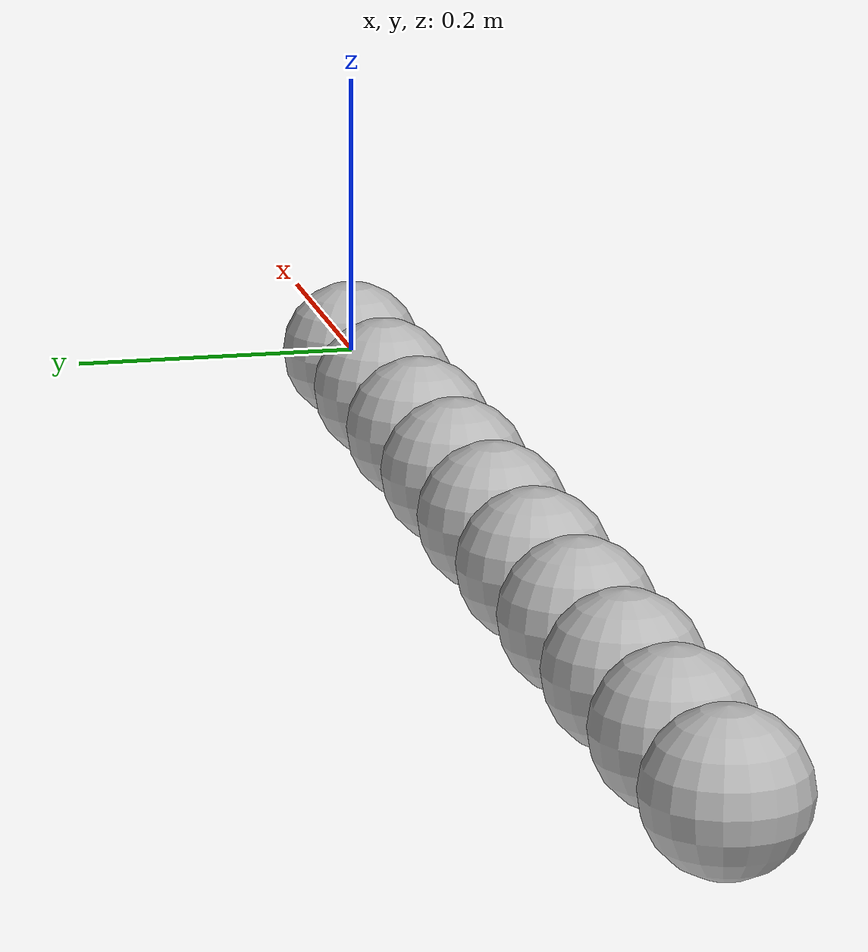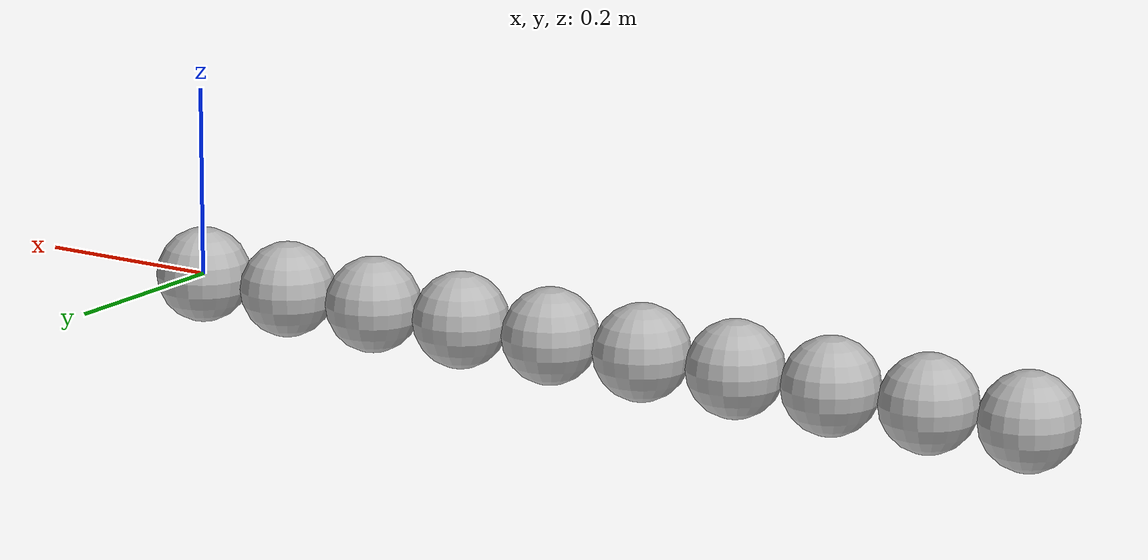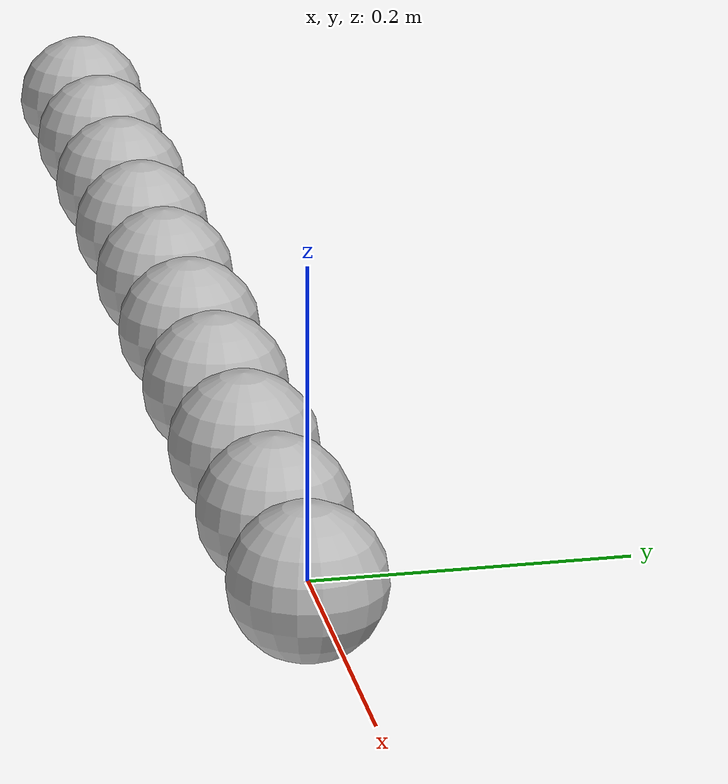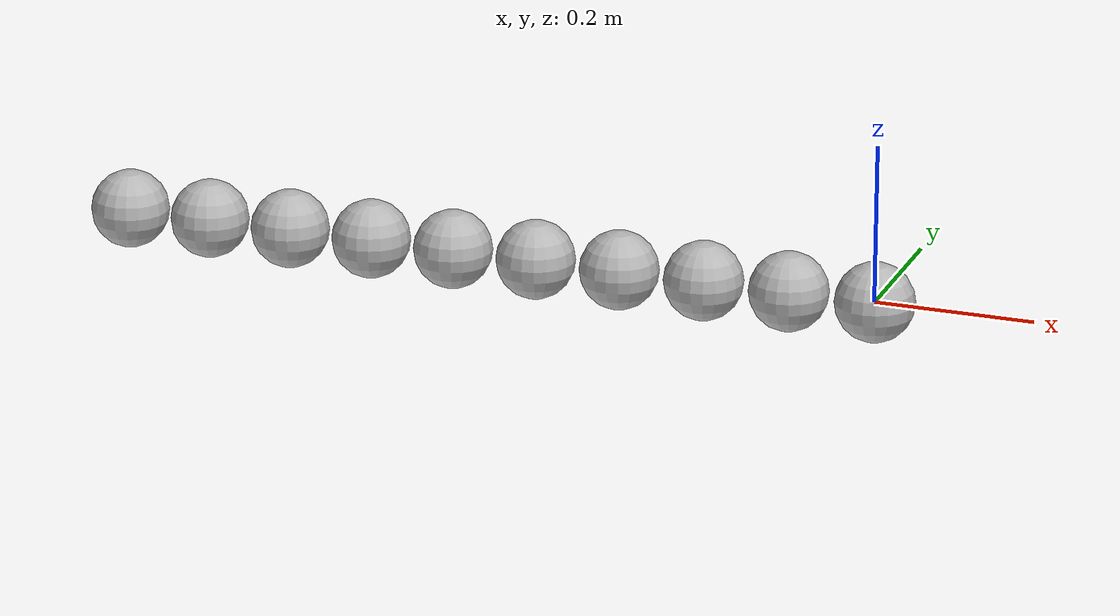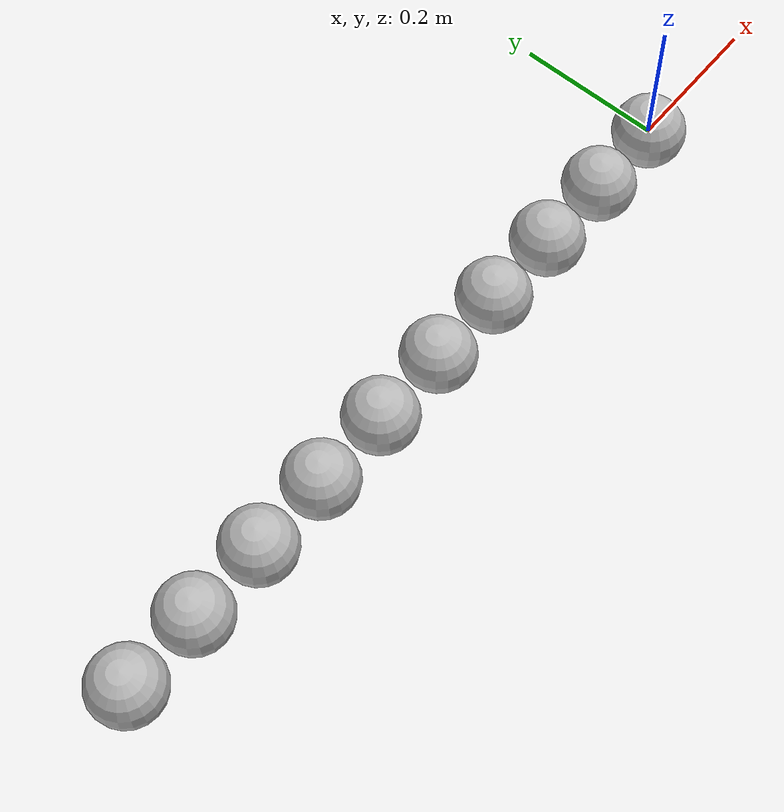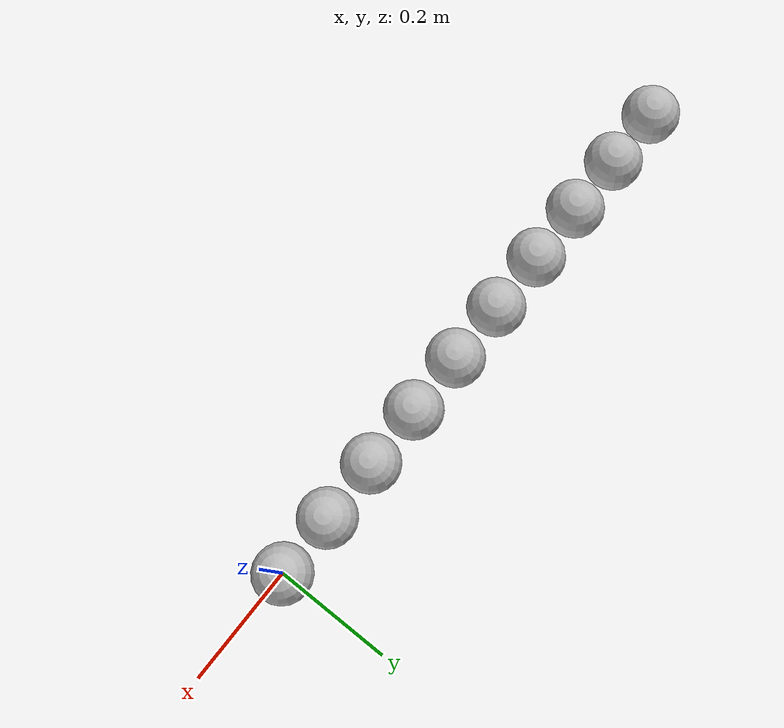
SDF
<?xml version='1.0' ?>
<!-- pybulletで使うときはballをsphericalをする-->
<!-- https://pybullet.org/Bullet/phpBB3/viewtopic.php?t=12687 -->
<!--  link同士の最短距離は0.01 -->
<!-- TODO もう少し紐を柔らかくする -->
<!-- TODO add axis alement -->
<sdf version="1.6">
  <model name="string_object">

    <self_collide>1</self_collide>

    <link name="link1">
      <collision name="collision1">
        <geometry>
          <sphere>
            <radius>0.05</radius>
          </sphere>
        </geometry>
      </collision>
      <visual name="visual1">
        <geometry>
          <sphere>
            <radius>0.05</radius>
          </sphere>
        </geometry>
      </visual>
      <inertial>
        <mass>0.1</mass>
        <inertia>
          <ixx>1.0</ixx>
          <ixy>0</ixy>
          <ixz>0</ixz>
          <iyy>1.0</iyy>
          <iyz>0</iyz>
          <izz>1.0</izz>
        </inertia>
      </inertial>
      <pose frame=''>0 0 0 0 0 0</pose>
    </link>

    <joint name="joint1" type="spherical">
      <parent>link1</parent>
      <child>link2</child>
      <pose frame=''>0.055 0 0 0 0 0</pose>
    </joint>

    <link name="link2">
      <collision name="collision2">
        <geometry>
          <sphere>
            <radius>0.05</radius>
          </sphere>
        </geometry>
      </collision>
      <visual name="visual2">
        <geometry>
          <sphere>
            <radius>0.05</radius>
          </sphere>
        </geometry>
      </visual>
      <inertial>
        <mass>0.1</mass>
        <inertia>
          <ixx>1.0</ixx>
          <ixy>0</ixy>
          <ixz>0</ixz>
          <iyy>1.0</iyy>
          <iyz>0</iyz>
          <izz>1.0</izz>
        </inertia>
      </inertial>
      <pose frame=''>-0.11 0 0 0 0 0</pose>
    </link>

    <joint name="joint2" type="spherical">
      <parent>link2</parent>
      <child>link3</child>
      <pose frame=''>0.055 0 0 0 0 0</pose>
    </joint>

    <link name="link3">
      <collision name="collision3">
        <geometry>
          <sphere>
            <radius>0.05</radius>
          </sphere>
        </geometry>
      </collision>
      <visual name="visual3">
        <geometry>
          <sphere>
            <radius>0.05</radius>
          </sphere>
        </geometry>
      </visual>
      <inertial>
        <mass>0.1</mass>
        <inertia>
          <ixx>1.0</ixx>
          <ixy>0</ixy>
          <ixz>0</ixz>
          <iyy>1.0</iyy>
          <iyz>0</iyz>
          <izz>1.0</izz>
        </inertia>
      </inertial>
      <pose frame=''>-0.22 0 0 0 0 0</pose>
    </link>

    <joint name="joint3" type="spherical">
      <parent>link3</parent>
      <child>link4</child>
      <pose frame=''>0.055 0 0 0 0 0</pose>
    </joint>

    <link name="link4">
      <collision name="collision4">
        <geometry>
          <sphere>
            <radius>0.05</radius>
          </sphere>
        </geometry>
      </collision>
      <visual name="visual4">
        <geometry>
          <sphere>
            <radius>0.05</radius>
          </sphere>
        </geometry>
      </visual>
      <inertial>
        <mass>0.1</mass>
        <inertia>
          <ixx>1.0</ixx>
          <ixy>0</ixy>
          <ixz>0</ixz>
          <iyy>1.0</iyy>
          <iyz>0</iyz>
          <izz>1.0</izz>
        </inertia>
      </inertial>
      <pose frame=''>-0.33 0 0 0 0 0</pose>
    </link>

    <joint name="joint4" type="spherical">
      <parent>link4</parent>
      <child>link5</child>
      <pose frame=''>0.055 0 0 0 0 0</pose>
    </joint>

    <link name="link5">
      <collision name="collision5">
        <geometry>
          <sphere>
            <radius>0.05</radius>
          </sphere>
        </geometry>
      </collision>
      <visual name="visual5">
        <geometry>
          <sphere>
            <radius>0.05</radius>
          </sphere>
        </geometry>
      </visual>
      <inertial>
        <mass>0.1</mass>
        <inertia>
          <ixx>1.0</ixx>
          <ixy>0</ixy>
          <ixz>0</ixz>
          <iyy>1.0</iyy>
          <iyz>0</iyz>
          <izz>1.0</izz>
        </inertia>
      </inertial>
      <pose frame=''>-0.44 0 0 0 0 0</pose>
    </link>

    <joint name="joint5" type="spherical">
      <parent>link5</parent>
      <child>link6</child>
      <pose frame=''>0.055 0 0 0 0 0</pose>
    </joint>

    <link name="link6">
      <collision name="collision6">
        <geometry>
          <sphere>
            <radius>0.05</radius>
          </sphere>
        </geometry>
      </collision>
      <visual name="visual6">
        <geometry>
          <sphere>
            <radius>0.05</radius>
          </sphere>
        </geometry>
      </visual>
      <inertial>
        <mass>0.1</mass>
        <inertia>
          <ixx>1.0</ixx>
          <ixy>0</ixy>
          <ixz>0</ixz>
          <iyy>1.0</iyy>
          <iyz>0</iyz>
          <izz>1.0</izz>
        </inertia>
      </inertial>
      <pose frame=''>-0.55 0 0 0 0 0</pose>
    </link>

    <joint name="joint6" type="spherical">
      <parent>link6</parent>
      <child>link7</child>
      <pose frame=''>0.055 0 0 0 0 0</pose>
    </joint>

    <link name="link7">
      <collision name="collision7">
        <geometry>
          <sphere>
            <radius>0.05</radius>
          </sphere>
        </geometry>
      </collision>
      <visual name="visual7">
        <geometry>
          <sphere>
            <radius>0.05</radius>
          </sphere>
        </geometry>
      </visual>
      <inertial>
        <mass>0.1</mass>
        <inertia>
          <ixx>1.0</ixx>
          <ixy>0</ixy>
          <ixz>0</ixz>
          <iyy>1.0</iyy>
          <iyz>0</iyz>
          <izz>1.0</izz>
        </inertia>
      </inertial>
      <pose frame=''>-0.66 0 0 0 0 0</pose>
    </link>

    <joint name="joint7" type="spherical">
      <parent>link7</parent>
      <child>link8</child>
      <pose frame=''>0.055 0 0 0 0 0</pose>
    </joint>

    <link name="link8">
      <collision name="collision8">
        <geometry>
          <sphere>
            <radius>0.05</radius>
          </sphere>
        </geometry>
      </collision>
      <visual name="visual8">
        <geometry>
          <sphere>
            <radius>0.05</radius>
          </sphere>
        </geometry>
      </visual>
      <inertial>
        <mass>0.1</mass>
        <inertia>
          <ixx>1.0</ixx>
          <ixy>0</ixy>
          <ixz>0</ixz>
          <iyy>1.0</iyy>
          <iyz>0</iyz>
          <izz>1.0</izz>
        </inertia>
      </inertial>
      <pose frame=''>-0.77 0 0 0 0 0</pose>
    </link>

    <joint name="joint8" type="spherical">
      <parent>link8</parent>
      <child>link9</child>
      <pose frame=''>0.055 0 0 0 0 0</pose>
    </joint>

    <link name="link9">
      <collision name="collision9">
        <geometry>
          <sphere>
            <radius>0.05</radius>
          </sphere>
        </geometry>
      </collision>
      <visual name="visual9">
        <geometry>
          <sphere>
            <radius>0.05</radius>
          </sphere>
        </geometry>
      </visual>
      <inertial>
        <mass>0.1</mass>
        <inertia>
          <ixx>1.0</ixx>
          <ixy>0</ixy>
          <ixz>0</ixz>
          <iyy>1.0</iyy>
          <iyz>0</iyz>
          <izz>1.0</izz>
        </inertia>
      </inertial>
      <pose frame=''>-0.88 0 0 0 0 0</pose>
    </link>

    <joint name="joint9" type="spherical">
      <parent>link9</parent>
      <child>link10</child>
      <pose frame=''>0.055 0 0 0 0 0</pose>
    </joint>

    <link name="link10">
      <collision name="collision10">
        <geometry>
          <sphere>
            <radius>0.05</radius>
          </sphere>
        </geometry>
      </collision>
      <visual name="visual10">
        <geometry>
          <sphere>
            <radius>0.05</radius>
          </sphere>
        </geometry>
      </visual>
      <inertial>
        <mass>0.1</mass>
        <inertia>
          <ixx>1.0</ixx>
          <ixy>0</ixy>
          <ixz>0</ixz>
          <iyy>1.0</iyy>
          <iyz>0</iyz>
          <izz>1.0</izz>
        </inertia>
      </inertial>
      <pose frame=''>-0.99 0 0 0 0 0</pose>
    </link>

  </model>
</sdf>
